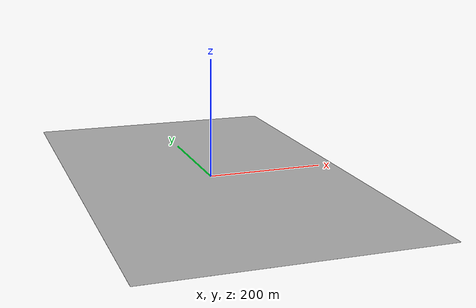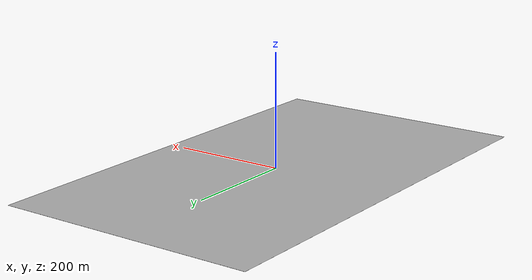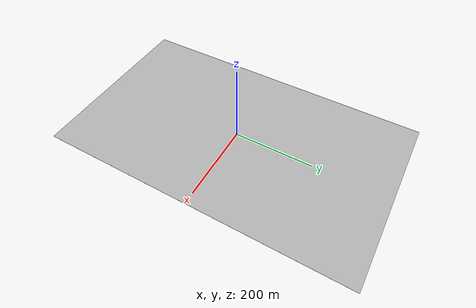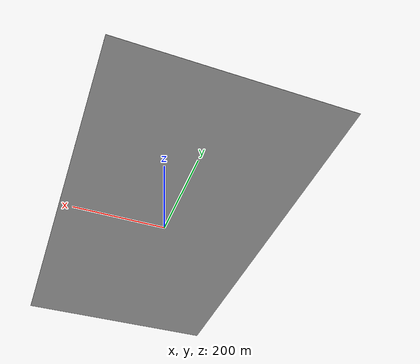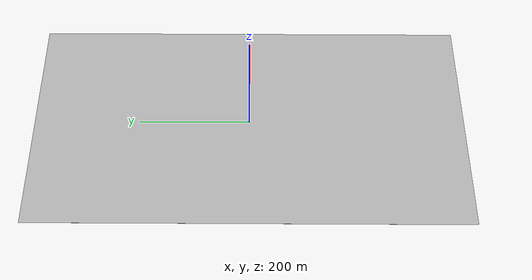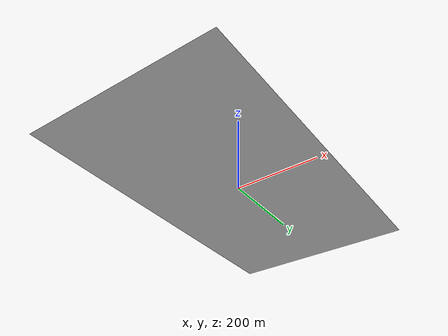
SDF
<?xml version="1.0" ?>
<sdf version="1.5">
  <model name="burguillos_power_lines">
    <static>true</static>
    <link name="floor">
      <collision name="collision">
        <geometry>
          <box>
            <size>459.08 783.68 .1</size>
          </box>
        </geometry>
      </collision>
      <visual name="visual">
        <cast_shadows>false</cast_shadows>
        <geometry>
          <box>
            <size>459.08 783.68 .1</size>
          </box>
        </geometry>
        <material>
          <script>
            <uri>model://burguillos_power_lines/materials/scripts</uri>
            <uri>model://burguillos_power_lines/materials/textures</uri>
            <name>burguillos_power_lines</name>
          </script>
        </material>
      </visual>
    </link>
  </model>
</sdf>
